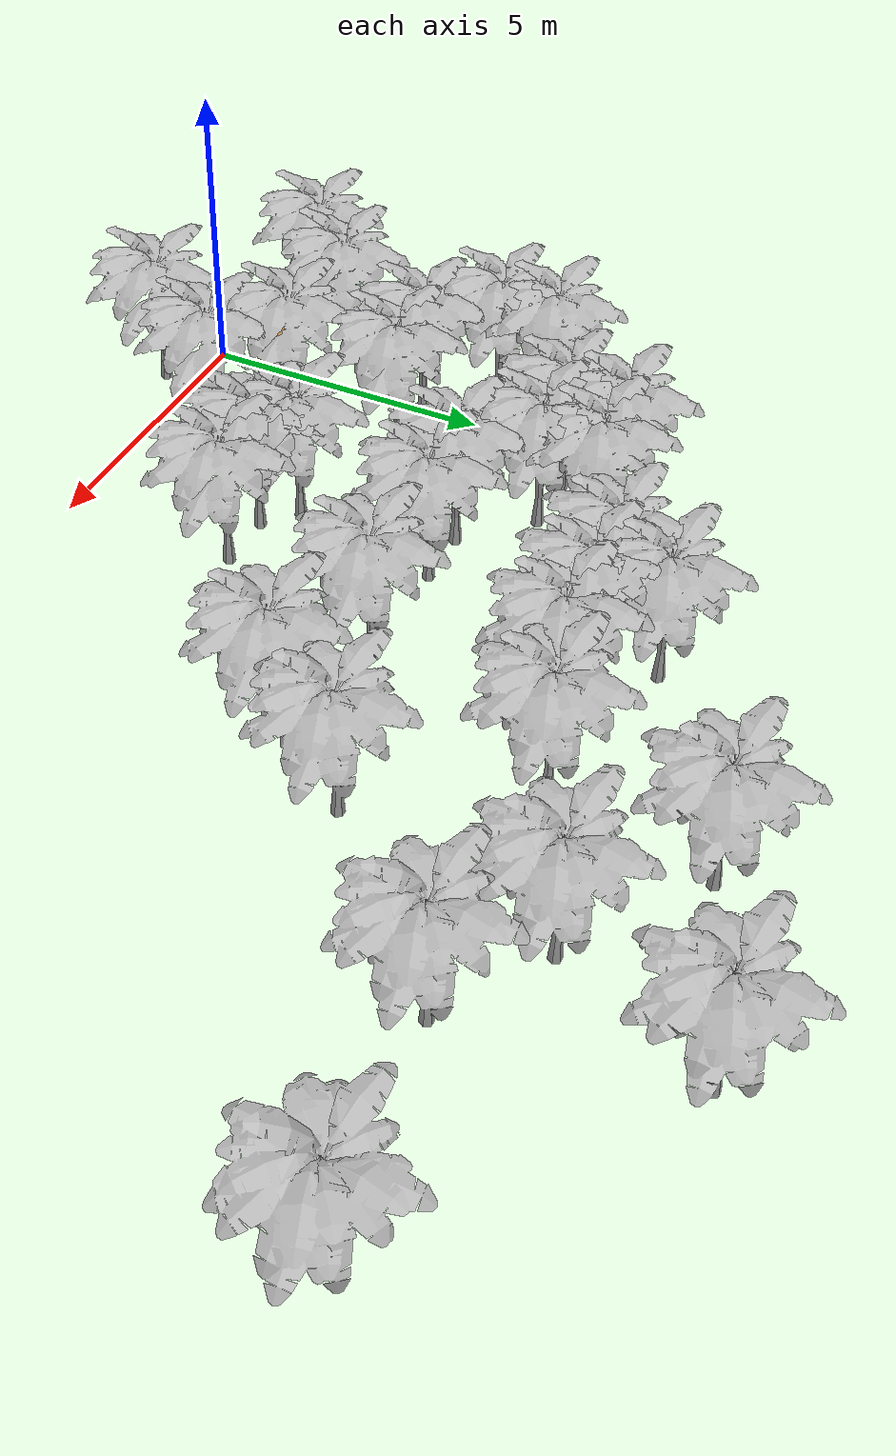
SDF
<sdf version="1.4">
 <world name="default">
  <model name="ground_plane">
   <static>1</static>
   <link name="link">
    <collision name="collision">
     <geometry><plane><normal>0 0 1</normal><size>100 100</size></plane></geometry>
     <surface><friction><ode><mu>100</mu><mu2>50</mu2></ode></friction></surface>
    </collision>
    <velocity_decay><linear>0</linear><angular>0</angular></velocity_decay>
   </link>
  </model>
  <light name="sun" type="directional">
   <pose>0 0 3 0 -0 0</pose>
   <diffuse>0.8 0.8 0.8 1</diffuse>
   <specular>0.2 0.2 0.2 1</specular>
   <attenuation>
    <range>1000</range>
    <constant>0.9</constant>
    <linear>0.01</linear>
    <quadratic>0.001</quadratic>
   </attenuation>
   <direction>-0 0 -1</direction>
  </light>
  <physics type="ode">
   <max_step_size>0.001</max_step_size>
   <real_time_factor>1</real_time_factor>
   <real_time_update_rate>1000</real_time_update_rate>
   <gravity>0 0 -9.8</gravity>
  </physics>
  <scene><ambient>0.4 0.4 0.4 1</ambient><background>0.7 0.7 0.7 1</background><shadows>1</shadows></scene>
  <spherical_coordinates>
   <surface_model>EARTH_WGS84</surface_model>
   <latitude_deg>0</latitude_deg>
   <longitude_deg>0</longitude_deg>
   <elevation>0</elevation>
   <heading_deg>0</heading_deg>
  </spherical_coordinates>
  <model name="tree">
   <static>1</static>
   <link name="tree">
    <visual name="visual"><geometry><mesh><uri>model://tree/meshes/tree.dae</uri></mesh></geometry></visual>
    <collision name="collision">
     <geometry><mesh><uri>model://tree/meshes/tree.dae</uri></mesh></geometry>
    </collision>
    <velocity_decay><linear>0</linear><angular>0</angular></velocity_decay>
   </link>
   <pose>-1 2 0 0 -0 0</pose>
  </model>
  <model name="tree_0">
   <static>1</static>
   <link name="tree">
    <visual name="visual"><geometry><mesh><uri>model://tree/meshes/tree.dae</uri></mesh></geometry></visual>
    <collision name="collision">
     <geometry><mesh><uri>model://tree/meshes/tree.dae</uri></mesh></geometry>
    </collision>
    <velocity_decay><linear>0</linear><angular>0</angular></velocity_decay>
   </link>
   <pose>1 2 0 0 -0 0</pose>
  </model>
  <model name="tree_1">
   <static>1</static>
   <link name="tree">
    <visual name="visual"><geometry><mesh><uri>model://tree/meshes/tree.dae</uri></mesh></geometry></visual>
    <collision name="collision">
     <geometry><mesh><uri>model://tree/meshes/tree.dae</uri></mesh></geometry>
    </collision>
    <velocity_decay><linear>0</linear><angular>0</angular></velocity_decay>
   </link>
   <pose>-1 6 0 0 -0 0</pose>
  </model>
  <model name="tree_2">
   <static>1</static>
   <link name="tree">
    <visual name="visual"><geometry><mesh><uri>model://tree/meshes/tree.dae</uri></mesh></geometry></visual>
    <collision name="collision">
     <geometry><mesh><uri>model://tree/meshes/tree.dae</uri></mesh></geometry>
    </collision>
    <velocity_decay><linear>0</linear><angular>0</angular></velocity_decay>
   </link>
   <pose>0 4 0 0 -0 0</pose>
  </model>
  <model name="tree_3">
   <static>1</static>
   <link name="tree">
    <visual name="visual"><geometry><mesh><uri>model://tree/meshes/tree.dae</uri></mesh></geometry></visual>
    <collision name="collision">
     <geometry><mesh><uri>model://tree/meshes/tree.dae</uri></mesh></geometry>
    </collision>
    <velocity_decay><linear>0</linear><angular>0</angular></velocity_decay>
   </link>
   <pose>2 1 0 0 -0 0</pose>
  </model>
  <model name="tree_4">
   <static>1</static>
   <link name="tree">
    <visual name="visual"><geometry><mesh><uri>model://tree/meshes/tree.dae</uri></mesh></geometry></visual>
    <collision name="collision">
     <geometry><mesh><uri>model://tree/meshes/tree.dae</uri></mesh></geometry>
    </collision>
    <velocity_decay><linear>0</linear><angular>0</angular></velocity_decay>
   </link>
   <pose>1 -0.591734 0 0 -0 0</pose>
  </model>
  <model name="tree_5">
   <static>1</static>
   <link name="tree">
    <visual name="visual"><geometry><mesh><uri>model://tree/meshes/tree.dae</uri></mesh></geometry></visual>
    <collision name="collision">
     <geometry><mesh><uri>model://tree/meshes/tree.dae</uri></mesh></geometry>
    </collision>
    <velocity_decay><linear>0</linear><angular>0</angular></velocity_decay>
   </link>
   <pose>-2 1 0 0 -0 0</pose>
  </model>
  <model name="tree_6">
   <static>1</static>
   <link name="tree">
    <visual name="visual"><geometry><mesh><uri>model://tree/meshes/tree.dae</uri></mesh></geometry></visual>
    <collision name="collision">
     <geometry><mesh><uri>model://tree/meshes/tree.dae</uri></mesh></geometry>
    </collision>
    <velocity_decay><linear>0</linear><angular>0</angular></velocity_decay>
   </link>
   <pose>1 4 0 0 -0 0</pose>
  </model>
  <model name="tree_7">
   <static>1</static>
   <link name="tree">
    <visual name="visual"><geometry><mesh><uri>model://tree/meshes/tree.dae</uri></mesh></geometry></visual>
    <collision name="collision">
     <geometry><mesh><uri>model://tree/meshes/tree.dae</uri></mesh></geometry>
    </collision>
    <velocity_decay><linear>0</linear><angular>0</angular></velocity_decay>
   </link>
   <pose>3.49251 3.47154 0 0 -0 0</pose>
  </model>
  <model name="tree_8">
   <static>1</static>
   <link name="tree">
    <visual name="visual"><geometry><mesh><uri>model://tree/meshes/tree.dae</uri></mesh></geometry></visual>
    <collision name="collision">
     <geometry><mesh><uri>model://tree/meshes/tree.dae</uri></mesh></geometry>
    </collision>
    <velocity_decay><linear>0</linear><angular>0</angular></velocity_decay>
   </link>
   <pose>3 6 0 0 -0 0</pose>
  </model>
  <model name="tree_9">
   <static>1</static>
   <link name="tree">
    <visual name="visual"><geometry><mesh><uri>model://tree/meshes/tree.dae</uri></mesh></geometry></visual>
    <collision name="collision">
     <geometry><mesh><uri>model://tree/meshes/tree.dae</uri></mesh></geometry>
    </collision>
    <velocity_decay><linear>0</linear><angular>0</angular></velocity_decay>
   </link>
   <pose>2 7 0 0 -0 0</pose>
  </model>
  <model name="tree_10">
   <static>1</static>
   <link name="tree">
    <visual name="visual"><geometry><mesh><uri>model://tree/meshes/tree.dae</uri></mesh></geometry></visual>
    <collision name="collision">
     <geometry><mesh><uri>model://tree/meshes/tree.dae</uri></mesh></geometry>
    </collision>
    <velocity_decay><linear>0</linear><angular>0</angular></velocity_decay>
   </link>
   <pose>6 6 0 0 -0 0</pose>
  </model>
  <model name="tree_11">
   <static>1</static>
   <link name="tree">
    <visual name="visual"><geometry><mesh><uri>model://tree/meshes/tree.dae</uri></mesh></geometry></visual>
    <collision name="collision">
     <geometry><mesh><uri>model://tree/meshes/tree.dae</uri></mesh></geometry>
    </collision>
    <velocity_decay><linear>0</linear><angular>0</angular></velocity_decay>
   </link>
   <pose>5 3 0 0 -0 0</pose>
  </model>
  <model name="tree_12">
   <static>1</static>
   <link name="tree">
    <visual name="visual"><geometry><mesh><uri>model://tree/meshes/tree.dae</uri></mesh></geometry></visual>
    <collision name="collision">
     <geometry><mesh><uri>model://tree/meshes/tree.dae</uri></mesh></geometry>
    </collision>
    <velocity_decay><linear>0</linear><angular>0</angular></velocity_decay>
   </link>
   <pose>4.59541 10 0 0 -0 0</pose>
  </model>
  <model name="tree_13">
   <static>1</static>
   <link name="tree">
    <visual name="visual"><geometry><mesh><uri>model://tree/meshes/tree.dae</uri></mesh></geometry></visual>
    <collision name="collision">
     <geometry><mesh><uri>model://tree/meshes/tree.dae</uri></mesh></geometry>
    </collision>
    <velocity_decay><linear>0</linear><angular>0</angular></velocity_decay>
   </link>
   <pose>5 9 0 0 -0 0</pose>
  </model>
  <model name="tree_14">
   <static>1</static>
   <link name="tree">
    <visual name="visual"><geometry><mesh><uri>model://tree/meshes/tree.dae</uri></mesh></geometry></visual>
    <collision name="collision">
     <geometry><mesh><uri>model://tree/meshes/tree.dae</uri></mesh></geometry>
    </collision>
    <velocity_decay><linear>0</linear><angular>0</angular></velocity_decay>
   </link>
   <pose>-1 5 0 0 -0 0</pose>
  </model>
  <model name="tree_15">
   <static>1</static>
   <link name="tree">
    <visual name="visual"><geometry><mesh><uri>model://tree/meshes/tree.dae</uri></mesh></geometry></visual>
    <collision name="collision">
     <geometry><mesh><uri>model://tree/meshes/tree.dae</uri></mesh></geometry>
    </collision>
    <velocity_decay><linear>0</linear><angular>0</angular></velocity_decay>
   </link>
   <pose>2 8 0 0 -0 0</pose>
  </model>
  <model name="tree_16">
   <static>1</static>
   <link name="tree">
    <visual name="visual"><geometry><mesh><uri>model://tree/meshes/tree.dae</uri></mesh></geometry></visual>
    <collision name="collision">
     <geometry><mesh><uri>model://tree/meshes/tree.dae</uri></mesh></geometry>
    </collision>
    <velocity_decay><linear>0</linear><angular>0</angular></velocity_decay>
   </link>
   <pose>4 6 0 0 -0 0</pose>
  </model>
  <model name="tree_17">
   <static>1</static>
   <link name="tree">
    <visual name="visual"><geometry><mesh><uri>model://tree/meshes/tree.dae</uri></mesh></geometry></visual>
    <collision name="collision">
     <geometry><mesh><uri>model://tree/meshes/tree.dae</uri></mesh></geometry>
    </collision>
    <velocity_decay><linear>0</linear><angular>0</angular></velocity_decay>
   </link>
   <pose>7.44487 9.42332 0 0 -0 0</pose>
  </model>
  <model name="tree_18">
   <static>1</static>
   <link name="tree">
    <visual name="visual"><geometry><mesh><uri>model://tree/meshes/tree.dae</uri></mesh></geometry></visual>
    <collision name="collision">
     <geometry><mesh><uri>model://tree/meshes/tree.dae</uri></mesh></geometry>
    </collision>
    <velocity_decay><linear>0</linear><angular>0</angular></velocity_decay>
   </link>
   <pose>1 8 0 0 -0 0</pose>
  </model>
  <model name="tree_19">
   <static>1</static>
   <link name="tree">
    <visual name="visual"><geometry><mesh><uri>model://tree/meshes/tree.dae</uri></mesh></geometry></visual>
    <collision name="collision">
     <geometry><mesh><uri>model://tree/meshes/tree.dae</uri></mesh></geometry>
    </collision>
    <velocity_decay><linear>0</linear><angular>0</angular></velocity_decay>
   </link>
   <pose>6 9 0 0 -0 0</pose>
  </model>
  <model name="tree_20">
   <static>1</static>
   <link name="tree">
    <visual name="visual"><geometry><mesh><uri>model://tree/meshes/tree.dae</uri></mesh></geometry></visual>
    <collision name="collision">
     <geometry><mesh><uri>model://tree/meshes/tree.dae</uri></mesh></geometry>
    </collision>
    <velocity_decay><linear>0</linear><angular>0</angular></velocity_decay>
   </link>
   <pose>4 3 0 0 -0 0</pose>
  </model>
  <model name="tree_21">
   <static>1</static>
   <link name="tree">
    <visual name="visual"><geometry><mesh><uri>model://tree/meshes/tree.dae</uri></mesh></geometry></visual>
    <collision name="collision">
     <geometry><mesh><uri>model://tree/meshes/tree.dae</uri></mesh></geometry>
    </collision>
    <velocity_decay><linear>0</linear><angular>0</angular></velocity_decay>
   </link>
   <pose>1 7 0 0 -0 0</pose>
  </model>
  <model name="tree_22">
   <static>1</static>
   <link name="tree">
    <visual name="visual"><geometry><mesh><uri>model://tree/meshes/tree.dae</uri></mesh></geometry></visual>
    <collision name="collision">
     <geometry><mesh><uri>model://tree/meshes/tree.dae</uri></mesh></geometry>
    </collision>
    <velocity_decay><linear>0</linear><angular>0</angular></velocity_decay>
   </link>
   <pose>4 9 0 0 -0 0</pose>
  </model>
  <model name="cabinet">
   <static>1</static>
   <link name="cabinet_bottom_plate">
    <inertial>
     <pose>0 0 -1 0 -0 0</pose>
     <inertia><ixx>2.05</ixx><ixy>0</ixy><ixz>0</ixz><iyy>2.05</iyy><iyz>0</iyz><izz>2.05</izz></inertia>
     <mass>25</mass>
    </inertial>
    <collision name="cabinet_bottom_plate_geom">
     <pose>0 0 0.01 0 -0 0</pose>
     <geometry><box><size>0.45 0.45 0.02</size></box></geometry>
    </collision>
    <visual name="cabinet_bottom_plate_geom_visual">
     <pose>0 0 0.01 0 -0 0</pose>
     <geometry><box><size>0.45 0.45 0.02</size></box></geometry>
     <material>
      <script><uri>file://media/materials/scripts/gazebo.material</uri><name>Gazebo/Wood</name></script>
     </material>
    </visual>
    <collision name="cabinet_bottom_plate_geom_cabinet_back_plate">
     <pose>0.235 0 0.51 0 -0 0</pose>
     <geometry><box><size>0.02 0.45 1.02</size></box></geometry>
    </collision>
    <visual name="cabinet_bottom_plate_geom_cabinet_back_plate_visual">
     <pose>0.235 0 0.51 0 -0 0</pose>
     <geometry><box><size>0.02 0.45 1.02</size></box></geometry>
     <material>
      <script><uri>file://media/materials/scripts/gazebo.material</uri><name>Gazebo/Wood</name></script>
     </material>
    </visual>
    <collision name="cabinet_bottom_plate_geom_cabinet_left_plate">
     <pose>0 0.235 0.51 0 -0 0</pose>
     <geometry><box><size>0.45 0.02 1.02</size></box></geometry>
    </collision>
    <visual name="cabinet_bottom_plate_geom_cabinet_left_plate_visual">
     <pose>0 0.235 0.51 0 -0 0</pose>
     <geometry><box><size>0.45 0.02 1.02</size></box></geometry>
     <material>
      <script><uri>file://media/materials/scripts/gazebo.material</uri><name>Gazebo/Wood</name></script>
     </material>
    </visual>
    <collision name="cabinet_bottom_plate_geom_cabinet_middle_plate">
     <pose>0 0 0.51 0 -0 0</pose>
     <geometry><box><size>0.45 0.45 0.02</size></box></geometry>
    </collision>
    <visual name="cabinet_bottom_plate_geom_cabinet_middle_plate_visual">
     <pose>0 0 0.51 0 -0 0</pose>
     <geometry><box><size>0.45 0.45 0.02</size></box></geometry>
     <material>
      <script><uri>file://media/materials/scripts/gazebo.material</uri><name>Gazebo/Wood</name></script>
     </material>
    </visual>
    <collision name="cabinet_bottom_plate_geom_cabinet_right_plate">
     <pose>0 -0.235 0.51 0 -0 0</pose>
     <geometry><box><size>0.45 0.02 1.02</size></box></geometry>
    </collision>
    <visual name="cabinet_bottom_plate_geom_cabinet_right_plate_visual">
     <pose>0 -0.235 0.51 0 -0 0</pose>
     <geometry><box><size>0.45 0.02 1.02</size></box></geometry>
     <material>
      <script><uri>file://media/materials/scripts/gazebo.material</uri><name>Gazebo/Wood</name></script>
     </material>
    </visual>
    <collision name="cabinet_bottom_plate_geom_cabinet_top_plate">
     <pose>0 0 1.01 0 -0 0</pose>
     <geometry><box><size>0.45 0.45 0.02</size></box></geometry>
    </collision>
    <visual name="cabinet_bottom_plate_geom_cabinet_top_plate_visual">
     <pose>0 0 1.01 0 -0 0</pose>
     <geometry><box><size>0.45 0.45 0.02</size></box></geometry>
     <material>
      <script><uri>file://media/materials/scripts/gazebo.material</uri><name>Gazebo/Wood</name></script>
     </material>
    </visual>
    <velocity_decay><linear>0</linear><angular>0</angular></velocity_decay>
   </link>
   <pose>0.197037 1.21522 0 0 -0 0</pose>
  </model>
  <model name="block_wall">
   <pose>-2.56135 1 0.30924 0 -0 0</pose>
   <static>1</static>
   <link name="blocks">
    <collision name="collision">
     <geometry><mesh><uri>model://drc_practice_block_wall/meshes/block_wall.dae</uri></mesh></geometry>
     <surface>
      <bounce><restitution_coefficient>0</restitution_coefficient><threshold>100000</threshold></bounce>
      <friction><ode><mu>100</mu><mu2>50</mu2></ode></friction>
      <contact>
       <ode><soft_cfm>0</soft_cfm><soft_erp>0.2</soft_erp><max_vel>0</max_vel><min_depth>0</min_depth></ode>
      </contact>
     </surface>
    </collision>
    <visual name="visual">
     <geometry><mesh><uri>model://drc_practice_block_wall/meshes/block_wall.dae</uri></mesh></geometry>
    </visual>
    <velocity_decay><linear>0</linear><angular>0</angular></velocity_decay>
   </link>
  </model>
  <model name="tree_23">
   <static>1</static>
   <link name="tree">
    <visual name="visual"><geometry><mesh><uri>model://tree/meshes/tree.dae</uri></mesh></geometry></visual>
    <collision name="collision">
     <geometry><mesh><uri>model://tree/meshes/tree.dae</uri></mesh></geometry>
    </collision>
    <velocity_decay><linear>0</linear><angular>0</angular></velocity_decay>
   </link>
   <pose>9 7 0 0 -0 0</pose>
  </model>
  <model name="tree_24">
   <static>1</static>
   <link name="tree">
    <visual name="visual"><geometry><mesh><uri>model://tree/meshes/tree.dae</uri></mesh></geometry></visual>
    <collision name="collision">
     <geometry><mesh><uri>model://tree/meshes/tree.dae</uri></mesh></geometry>
    </collision>
    <velocity_decay><linear>0</linear><angular>0</angular></velocity_decay>
   </link>
   <pose>8 5.49426 0 0 -0 0</pose>
  </model>
  <model name="tree_25">
   <static>1</static>
   <link name="tree">
    <visual name="visual"><geometry><mesh><uri>model://tree/meshes/tree.dae</uri></mesh></geometry></visual>
    <collision name="collision">
     <geometry><mesh><uri>model://tree/meshes/tree.dae</uri></mesh></geometry>
    </collision>
    <velocity_decay><linear>0</linear><angular>0</angular></velocity_decay>
   </link>
   <pose>8 12 0 0 -0 0</pose>
  </model>
  <model name="tree_26">
   <static>1</static>
   <link name="tree">
    <visual name="visual"><geometry><mesh><uri>model://tree/meshes/tree.dae</uri></mesh></geometry></visual>
    <collision name="collision">
     <geometry><mesh><uri>model://tree/meshes/tree.dae</uri></mesh></geometry>
    </collision>
    <velocity_decay><linear>0</linear><angular>0</angular></velocity_decay>
   </link>
   <pose>11.5664 9.5438 0 0 -0 0</pose>
  </model>
  <model name="tree_27">
   <static>1</static>
   <link name="tree">
    <visual name="visual"><geometry><mesh><uri>model://tree/meshes/tree.dae</uri></mesh></geometry></visual>
    <collision name="collision">
     <geometry><mesh><uri>model://tree/meshes/tree.dae</uri></mesh></geometry>
    </collision>
    <velocity_decay><linear>0</linear><angular>0</angular></velocity_decay>
   </link>
   <pose>11 13 0 0 -0 0</pose>
  </model>
  <model name="tree_28">
   <static>1</static>
   <link name="tree">
    <visual name="visual"><geometry><mesh><uri>model://tree/meshes/tree.dae</uri></mesh></geometry></visual>
    <collision name="collision">
     <geometry><mesh><uri>model://tree/meshes/tree.dae</uri></mesh></geometry>
    </collision>
    <velocity_decay><linear>0</linear><angular>0</angular></velocity_decay>
   </link>
   <pose>10 10.5891 0 0 -0 0</pose>
  </model>
  <model name="tree_29">
   <static>1</static>
   <link name="tree">
    <visual name="visual"><geometry><mesh><uri>model://tree/meshes/tree.dae</uri></mesh></geometry></visual>
    <collision name="collision">
     <geometry><mesh><uri>model://tree/meshes/tree.dae</uri></mesh></geometry>
    </collision>
    <velocity_decay><linear>0</linear><angular>0</angular></velocity_decay>
   </link>
   <pose>15 10 0 0 -0 0</pose>
  </model>
  <model name="juliett">
   <link name="base_link">
    <inertial>
     <pose>0 5.99999e-08 2.89999e-07 0 -0 0</pose>
     <mass>0.500001</mass>
     <inertia>
      <ixx>0.00320905</ixx>
      <ixy>0.000274998</ixy>
      <ixz>8.18185e-17</ixz>
      <iyy>0.00320905</iyy>
      <iyz>-4.34999e-09</iyz>
      <izz>0.00571283</izz>
     </inertia>
    </inertial>
    <collision name="base_link_collision">
     <geometry>
      <mesh>
       <scale>1 1 1</scale>
       <uri>/home/sikang/ros/catkin_ws/src/quadrotor_utils/mrsl_quadrotor/mrsl_models/models/pelican/pelican.stl</uri>
      </mesh>
     </geometry>
    </collision>
    <collision name="base_link_collision_camera_link">
     <pose>0 0.03 0.145 -3.14159 -0 0.785398</pose>
     <geometry>
      <mesh>
       <scale>1 1 1</scale>
       <uri>/home/sikang/ros/catkin_ws/src/quadrotor_utils/mrsl_quadrotor/mrsl_models/models/sensors/kinect/kinect.stl</uri>
      </mesh>
     </geometry>
    </collision>
    <collision name="base_link_collision_laser_cap">
     <pose>-0.00707107 -0.00707107 0.117 0 -0 0.785398</pose>
     <geometry>
      <mesh>
       <scale>1 1 1</scale>
       <uri>/home/sikang/ros/catkin_ws/src/quadrotor_utils/mrsl_quadrotor/mrsl_models/models/sensors/laser_cap/laser_cap.stl</uri>
      </mesh>
     </geometry>
    </collision>
    <collision name="base_link_collision_laser_frame">
     <pose>0 0 0.09 0 -0 0.785398</pose>
     <geometry>
      <mesh>
       <scale>1 1 1</scale>
       <uri>/home/sikang/ros/catkin_ws/src/quadrotor_utils/mrsl_quadrotor/mrsl_models/models/sensors/hokuyo_utm_30lx/utm_30lx.stl</uri>
      </mesh>
     </geometry>
    </collision>
    <visual name="base_link_visual">
     <geometry>
      <mesh>
       <scale>1 1 1</scale>
       <uri>/home/sikang/ros/catkin_ws/src/quadrotor_utils/mrsl_quadrotor/mrsl_models/models/pelican/pelican.dae</uri>
      </mesh>
     </geometry>
    </visual>
    <visual name="base_link_visual_camera_link">
     <pose>0 0.03 0.145 -3.14159 -0 0.785398</pose>
     <geometry>
      <mesh>
       <scale>1 1 1</scale>
       <uri>/home/sikang/ros/catkin_ws/src/quadrotor_utils/mrsl_quadrotor/mrsl_models/models/sensors/kinect/kinect.dae</uri>
      </mesh>
     </geometry>
    </visual>
    <visual name="base_link_visual_laser_cap">
     <pose>-0.00707107 -0.00707107 0.117 0 -0 0.785398</pose>
     <geometry>
      <mesh>
       <scale>1 1 1</scale>
       <uri>/home/sikang/ros/catkin_ws/src/quadrotor_utils/mrsl_quadrotor/mrsl_models/models/sensors/laser_cap/laser_cap.dae</uri>
      </mesh>
     </geometry>
    </visual>
    <visual name="base_link_visual_laser_frame">
     <pose>0 0 0.09 0 -0 0.785398</pose>
     <geometry>
      <mesh>
       <scale>1 1 1</scale>
       <uri>/home/sikang/ros/catkin_ws/src/quadrotor_utils/mrsl_quadrotor/mrsl_models/models/sensors/hokuyo_utm_30lx/utm_30lx.dae</uri>
      </mesh>
     </geometry>
    </visual>
    <velocity_decay><linear>0</linear><angular>0</angular></velocity_decay>
    <sensor name="camera" type="depth">
     <update_rate>15</update_rate>
     <camera name="__default__">
      <horizontal_fov>1.09607</horizontal_fov>
      <image><format>R8G8B8</format><width>640</width><height>480</height></image>
      <clip><near>0.1</near><far>6</far></clip>
     </camera>
     <plugin name="camera_camera_controller" filename="libgazebo_ros_openni_kinect.so">
      <alwaysOn>true</alwaysOn>
      <updateRate>15</updateRate>
      <imageTopicName>camera/rgb/image_raw</imageTopicName>
      <cameraInfoTopicName>camera/rgb/camera_info</cameraInfoTopicName>
      <depthImageTopicName>camera/depth/image_raw</depthImageTopicName>
      <depthImageCameraInfoTopicName>camera/depth/camera_info</depthImageCameraInfoTopicName>
      <pointCloudTopicName>camera/depth/points</pointCloudTopicName>
      <frameName>camera_depth_optical_frame</frameName>
      <distortion_k1>0.0</distortion_k1>
      <distortion_k2>0.0</distortion_k2>
      <distortion_k3>0.0</distortion_k3>
      <distortion_t1>0.0</distortion_t1>
      <distortion_t2>0.0</distortion_t2>
      <pointCloudCutoff>0.1</pointCloudCutoff>
      <pointCloudCutoffMax>9.0</pointCloudCutoffMax>
      <robotNamespace>/juliett/</robotNamespace>
     </plugin>
     <pose>0.0346482 -0.00464823 0.145 -3.14159 -0 0.785398</pose>
    </sensor>
    <velocity_decay><linear>0</linear><angular>0</angular></velocity_decay>
    <sensor name="laser" type="ray">
     <always_on>1</always_on>
     <update_rate>40</update_rate>
     <visualize>0</visualize>
     <ray>
      <scan>
       <horizontal>
        <samples>1081</samples>
        <resolution>1</resolution>
        <min_angle>-2.35619</min_angle>
        <max_angle>2.35619</max_angle>
       </horizontal>
      </scan>
      <range><min>0.3</min><max>30</max><resolution>0.01</resolution></range>
     </ray>
     <plugin name="gazebo_ros_laser_controller" filename="libgazebo_ros_laser.so">
      <gaussianNoise>0.005</gaussianNoise>
      <alwaysOn>true</alwaysOn>
      <updateRate>40</updateRate>
      <topicName>laser/scan</topicName>
      <frameName>laser_frame</frameName>
      <robotNamespace>/juliett/</robotNamespace>
     </plugin>
     <pose>0 0 0.09 0 -0 0.785398</pose>
    </sensor>
   </link>
   <static>0</static>
   <plugin name="quadrotor_propulsion" filename="libmrsl_quadrotor_propulsion.so">
    <command_topic>so3_cmd</command_topic>
    <odom_topic>ground_truth/odom</odom_topic>
    <robotNamespace>/juliett/</robotNamespace>
   </plugin>
   <plugin name="quadrotor_groundtruth_sim" filename="libgazebo_ros_p3d.so">
    <updateRate>100.0</updateRate>
    <bodyName>base_link</bodyName>
    <topicName>ground_truth/odom</topicName>
    <gaussianNoise>0.0</gaussianNoise>
    <frameName>world</frameName>
    <robotNamespace>/juliett/</robotNamespace>
   </plugin>
   <plugin name="quadrotor_imu_sim" filename="libhector_gazebo_ros_imu.so">
    <updateRate>100.0</updateRate>
    <bodyName>base_link</bodyName>
    <topicName>raw_imu</topicName>
    <rpyOffsets>0 0 0</rpyOffsets>
    <gaussianNoise>0</gaussianNoise>
    <accelDrift>0.5 0.5 0.5</accelDrift>
    <accelGaussianNoise>0.35 0.35 0.3</accelGaussianNoise>
    <rateDrift>0.1 0.1 0.1</rateDrift>
    <rateGaussianNoise>0.05 0.05 0.015</rateGaussianNoise>
    <headingDrift>0.1</headingDrift>
    <headingGaussianNoise>0.05</headingGaussianNoise>
    <robotNamespace>/juliett/</robotNamespace>
   </plugin>
   <pose>-2e-06 -2e-06 0.083258 1.3e-05 -1.8e-05 -3e-05</pose>
  </model>
 </world>
</sdf>
